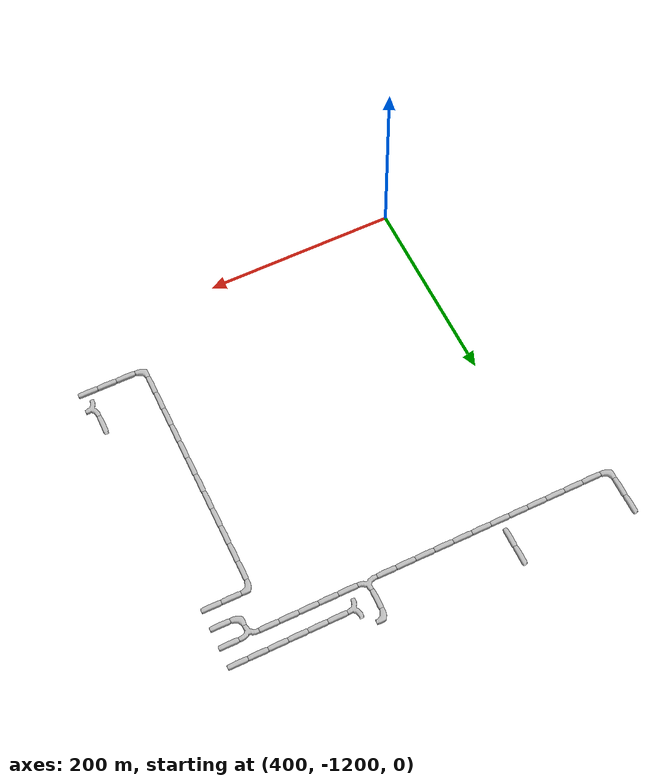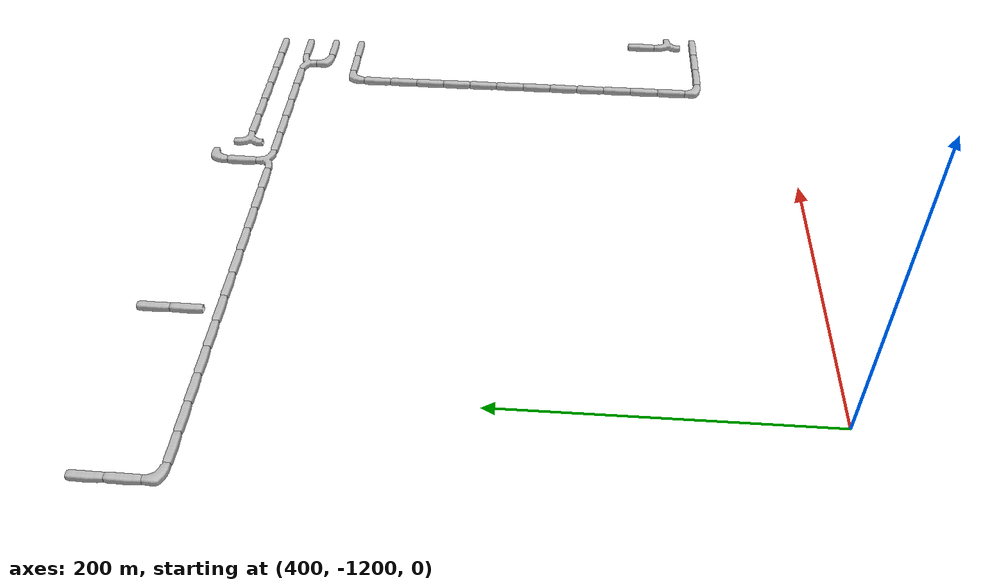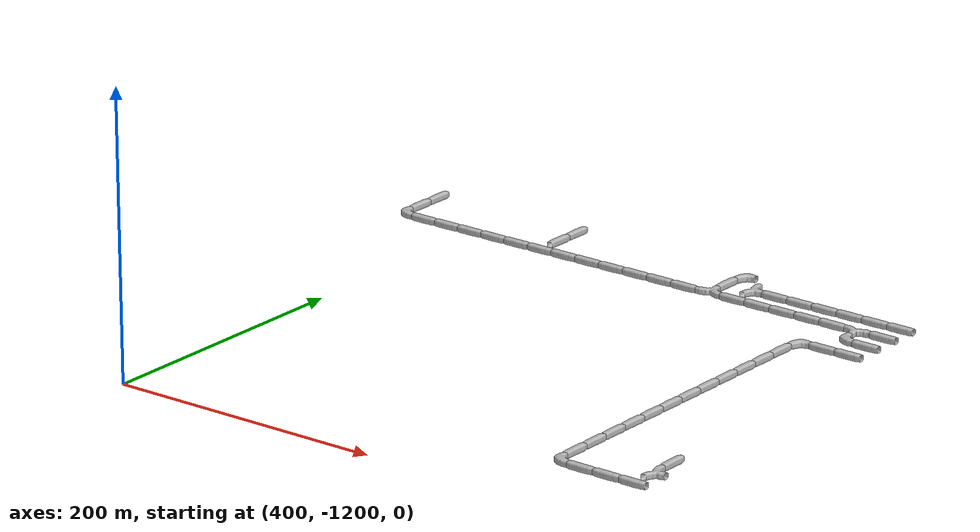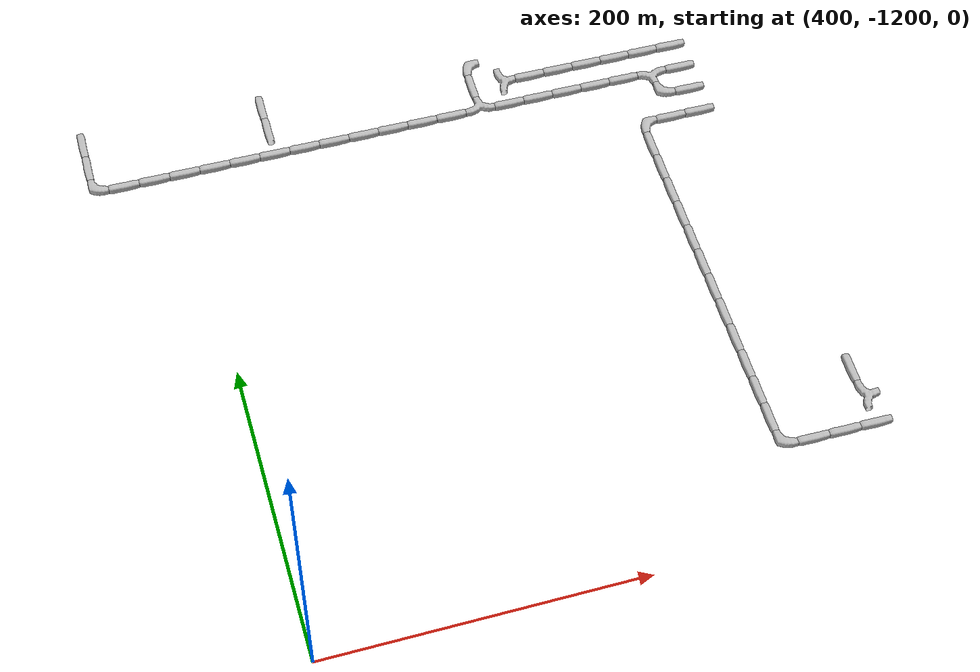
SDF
<sdf version="1.6">
 <world name="cave_32000_32">
  <include>
   <static>true</static>
   <name>cave_38_-57</name>
   <pose>760 -1140 0 0 0 1.5707963267948966</pose>
   <uri>model://cave_straight_20m</uri>
  </include>
  <include>
   <static>true</static>
   <name>cave_37_-57</name>
   <pose>740 -1140 0 0 0 1.5707963267948966</pose>
   <uri>model://cave_straight_20m</uri>
  </include>
  <include>
   <static>true</static>
   <name>cave_36_-57</name>
   <pose>720 -1140 0 0 0 1.5707963267948966</pose>
   <uri>model://cave_straight_20m</uri>
  </include>
  <include>
   <static>true</static>
   <name>cave_35_-57</name>
   <pose>700 -1140 0 0 0 0.0</pose>
   <uri>model://cave_L_20m</uri>
  </include>
  <include>
   <static>true</static>
   <name>cave_35_-56</name>
   <pose>700 -1120 0 0 0 0.0</pose>
   <uri>model://cave_straight_20m</uri>
  </include>
  <include>
   <static>true</static>
   <name>cave_35_-55</name>
   <pose>700 -1100 0 0 0 0.0</pose>
   <uri>model://cave_straight_20m</uri>
  </include>
  <include>
   <static>true</static>
   <name>cave_35_-54</name>
   <pose>700 -1080 0 0 0 0.0</pose>
   <uri>model://cave_straight_20m</uri>
  </include>
  <include>
   <static>true</static>
   <name>cave_35_-53</name>
   <pose>700 -1060 0 0 0 0.0</pose>
   <uri>model://cave_straight_20m</uri>
  </include>
  <include>
   <static>true</static>
   <name>cave_35_-52</name>
   <pose>700 -1040 0 0 0 0.0</pose>
   <uri>model://cave_straight_20m</uri>
  </include>
  <include>
   <static>true</static>
   <name>cave_35_-51</name>
   <pose>700 -1020 0 0 0 0.0</pose>
   <uri>model://cave_straight_20m</uri>
  </include>
  <include>
   <static>true</static>
   <name>cave_35_-50</name>
   <pose>700 -1000 0 0 0 0.0</pose>
   <uri>model://cave_straight_20m</uri>
  </include>
  <include>
   <static>true</static>
   <name>cave_35_-49</name>
   <pose>700 -980 0 0 0 0.0</pose>
   <uri>model://cave_straight_20m</uri>
  </include>
  <include>
   <static>true</static>
   <name>cave_35_-48</name>
   <pose>700 -960 0 0 0 0.0</pose>
   <uri>model://cave_straight_20m</uri>
  </include>
  <include>
   <static>true</static>
   <name>cave_35_-47</name>
   <pose>700 -940 0 0 0 0.0</pose>
   <uri>model://cave_straight_20m</uri>
  </include>
  <include>
   <static>true</static>
   <name>cave_35_-46</name>
   <pose>700 -920 0 0 0 0.0</pose>
   <uri>model://cave_straight_20m</uri>
  </include>
  <include>
   <static>true</static>
   <name>cave_35_-45</name>
   <pose>700 -900 0 0 0 0.0</pose>
   <uri>model://cave_straight_20m</uri>
  </include>
  <include>
   <static>true</static>
   <name>cave_35_-44</name>
   <pose>700 -880 0 0 0 -1.5707963267948966</pose>
   <uri>model://cave_L_20m</uri>
  </include>
  <include>
   <static>true</static>
   <name>cave_36_-44</name>
   <pose>720 -880 0 0 0 1.5707963267948966</pose>
   <uri>model://cave_straight_20m</uri>
  </include>
  <include>
   <static>true</static>
   <name>cave_37_-44</name>
   <pose>740 -880 0 0 0 1.5707963267948966</pose>
   <uri>model://cave_straight_20m</uri>
  </include>
  <include>
   <static>true</static>
   <name>cave_38_-55</name>
   <pose>760 -1100 0 0 0 0.0</pose>
   <uri>model://cave_straight_20m</uri>
  </include>
  <include>
   <static>true</static>
   <name>cave_38_-56</name>
   <pose>760 -1120 0 0 0 -1.5707963267948966</pose>
   <uri>model://cave_3way_20m</uri>
  </include>
  <include>
   <static>true</static>
   <name>cave_17_-40</name>
   <pose>340 -800 0 0 0 0.0</pose>
   <uri>model://cave_straight_20m</uri>
  </include>
  <include>
   <static>true</static>
   <name>cave_17_-41</name>
   <pose>340 -820 0 0 0 0.0</pose>
   <uri>model://cave_straight_20m</uri>
  </include>
  <include>
   <static>true</static>
   <name>cave_17_-42</name>
   <pose>340 -840 0 0 0 0.0</pose>
   <uri>model://cave_L_20m</uri>
  </include>
  <include>
   <static>true</static>
   <name>cave_18_-42</name>
   <pose>360 -840 0 0 0 1.5707963267948966</pose>
   <uri>model://cave_straight_20m</uri>
  </include>
  <include>
   <static>true</static>
   <name>cave_19_-42</name>
   <pose>380 -840 0 0 0 1.5707963267948966</pose>
   <uri>model://cave_straight_20m</uri>
  </include>
  <include>
   <static>true</static>
   <name>cave_20_-42</name>
   <pose>400 -840 0 0 0 1.5707963267948966</pose>
   <uri>model://cave_straight_20m</uri>
  </include>
  <include>
   <static>true</static>
   <name>cave_21_-42</name>
   <pose>420 -840 0 0 0 1.5707963267948966</pose>
   <uri>model://cave_straight_20m</uri>
  </include>
  <include>
   <static>true</static>
   <name>cave_22_-42</name>
   <pose>440 -840 0 0 0 1.5707963267948966</pose>
   <uri>model://cave_straight_20m</uri>
  </include>
  <include>
   <static>true</static>
   <name>cave_23_-42</name>
   <pose>460 -840 0 0 0 1.5707963267948966</pose>
   <uri>model://cave_straight_20m</uri>
  </include>
  <include>
   <static>true</static>
   <name>cave_24_-42</name>
   <pose>480 -840 0 0 0 1.5707963267948966</pose>
   <uri>model://cave_straight_20m</uri>
  </include>
  <include>
   <static>true</static>
   <name>cave_25_-42</name>
   <pose>500 -840 0 0 0 1.5707963267948966</pose>
   <uri>model://cave_straight_20m</uri>
  </include>
  <include>
   <static>true</static>
   <name>cave_26_-42</name>
   <pose>520 -840 0 0 0 1.5707963267948966</pose>
   <uri>model://cave_straight_20m</uri>
  </include>
  <include>
   <static>true</static>
   <name>cave_27_-42</name>
   <pose>540 -840 0 0 0 1.5707963267948966</pose>
   <uri>model://cave_straight_20m</uri>
  </include>
  <include>
   <static>true</static>
   <name>cave_28_-42</name>
   <pose>560 -840 0 0 0 1.5707963267948966</pose>
   <uri>model://cave_straight_20m</uri>
  </include>
  <include>
   <static>true</static>
   <name>cave_29_-42</name>
   <pose>580 -840 0 0 0 1.5707963267948966</pose>
   <uri>model://cave_straight_20m</uri>
  </include>
  <include>
   <static>true</static>
   <name>cave_30_-42</name>
   <pose>600 -840 0 0 0 0.0</pose>
   <uri>model://cave_3way_20m</uri>
  </include>
  <include>
   <static>true</static>
   <name>cave_31_-42</name>
   <pose>620 -840 0 0 0 1.5707963267948966</pose>
   <uri>model://cave_straight_20m</uri>
  </include>
  <include>
   <static>true</static>
   <name>cave_32_-42</name>
   <pose>640 -840 0 0 0 1.5707963267948966</pose>
   <uri>model://cave_straight_20m</uri>
  </include>
  <include>
   <static>true</static>
   <name>cave_33_-42</name>
   <pose>660 -840 0 0 0 1.5707963267948966</pose>
   <uri>model://cave_straight_20m</uri>
  </include>
  <include>
   <static>true</static>
   <name>cave_34_-42</name>
   <pose>680 -840 0 0 0 1.5707963267948966</pose>
   <uri>model://cave_straight_20m</uri>
  </include>
  <include>
   <static>true</static>
   <name>cave_35_-42</name>
   <pose>700 -840 0 0 0 1.5707963267948966</pose>
   <uri>model://cave_straight_20m</uri>
  </include>
  <include>
   <static>true</static>
   <name>cave_36_-42</name>
   <pose>720 -840 0 0 0 3.141592653589793</pose>
   <uri>model://cave_3way_20m</uri>
  </include>
  <include>
   <static>true</static>
   <name>cave_37_-42</name>
   <pose>740 -840 0 0 0 1.5707963267948966</pose>
   <uri>model://cave_straight_20m</uri>
  </include>
  <include>
   <static>true</static>
   <name>cave_36_-43</name>
   <pose>720 -860 0 0 0 0.0</pose>
   <uri>model://cave_L_20m</uri>
  </include>
  <include>
   <static>true</static>
   <name>cave_37_-43</name>
   <pose>740 -860 0 0 0 1.5707963267948966</pose>
   <uri>model://cave_straight_20m</uri>
  </include>
  <include>
   <static>true</static>
   <name>cave_30_-41</name>
   <pose>600 -820 0 0 0 0.0</pose>
   <uri>model://cave_straight_20m</uri>
  </include>
  <include>
   <static>true</static>
   <name>cave_30_-40</name>
   <pose>600 -800 0 0 0 -1.5707963267948966</pose>
   <uri>model://cave_L_20m</uri>
  </include>
  <include>
   <static>true</static>
   <name>cave_23_-40</name>
   <pose>460 -800 0 0 0 0.0</pose>
   <uri>model://cave_straight_20m</uri>
  </include>
  <include>
   <static>true</static>
   <name>cave_23_-41</name>
   <pose>460 -820 0 0 0 0.0</pose>
   <uri>model://cave_straight_20m</uri>
  </include>
  <include>
   <static>true</static>
   <name>cave_31_-41</name>
   <pose>620 -820 0 0 0 -1.5707963267948966</pose>
   <uri>model://cave_3way_20m</uri>
  </include>
  <include>
   <static>true</static>
   <name>cave_32_-41</name>
   <pose>640 -820 0 0 0 1.5707963267948966</pose>
   <uri>model://cave_straight_20m</uri>
  </include>
  <include>
   <static>true</static>
   <name>cave_33_-41</name>
   <pose>660 -820 0 0 0 1.5707963267948966</pose>
   <uri>model://cave_straight_20m</uri>
  </include>
  <include>
   <static>true</static>
   <name>cave_34_-41</name>
   <pose>680 -820 0 0 0 1.5707963267948966</pose>
   <uri>model://cave_straight_20m</uri>
  </include>
  <include>
   <static>true</static>
   <name>cave_35_-41</name>
   <pose>700 -820 0 0 0 1.5707963267948966</pose>
   <uri>model://cave_straight_20m</uri>
  </include>
  <include>
   <static>true</static>
   <name>cave_36_-41</name>
   <pose>720 -820 0 0 0 1.5707963267948966</pose>
   <uri>model://cave_straight_20m</uri>
  </include>
  <include>
   <static>true</static>
   <name>cave_37_-41</name>
   <pose>740 -820 0 0 0 1.5707963267948966</pose>
   <uri>model://cave_straight_20m</uri>
  </include>
 </world>
</sdf>
